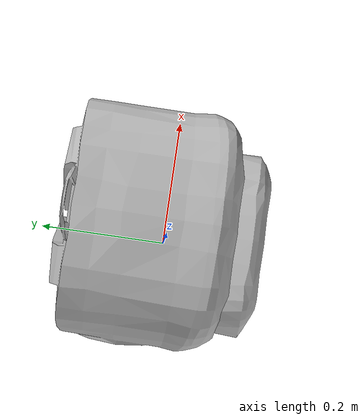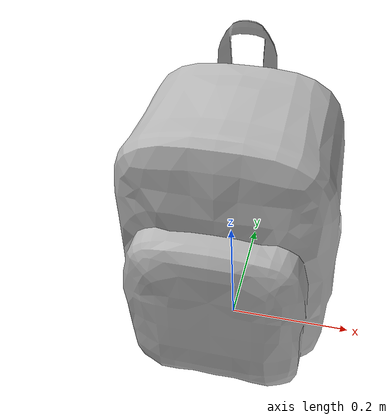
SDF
<?xml version='1.0' ?>
<sdf version='1.6'>
  <model name='jansport_backpack_red'>
    <static>true</static>
    <link name='link'>
      <collision name='collision'>
        <geometry>
          <mesh>
            <uri>model://pcg_jansport_backpack_red/meshes/backpack.dae</uri>
          </mesh>
        </geometry>
      </collision>
      <visual name='visual'>
        <geometry>
          <mesh>
            <uri>model://pcg_jansport_backpack_red/meshes/backpack.dae</uri>
          </mesh>
        </geometry>
      </visual>
    </link>
  </model>
</sdf>
